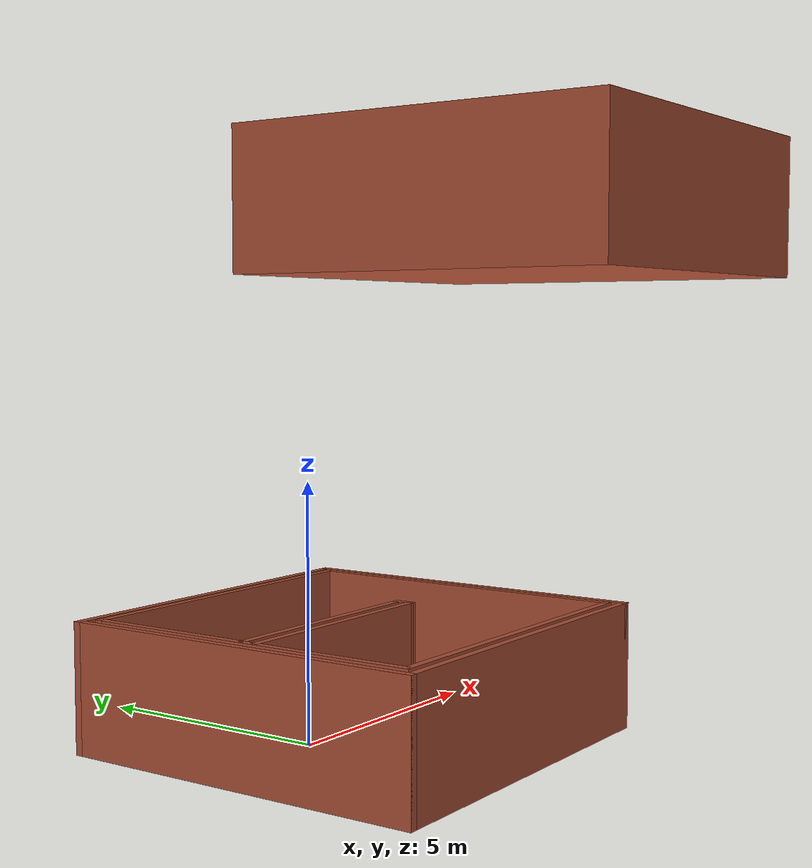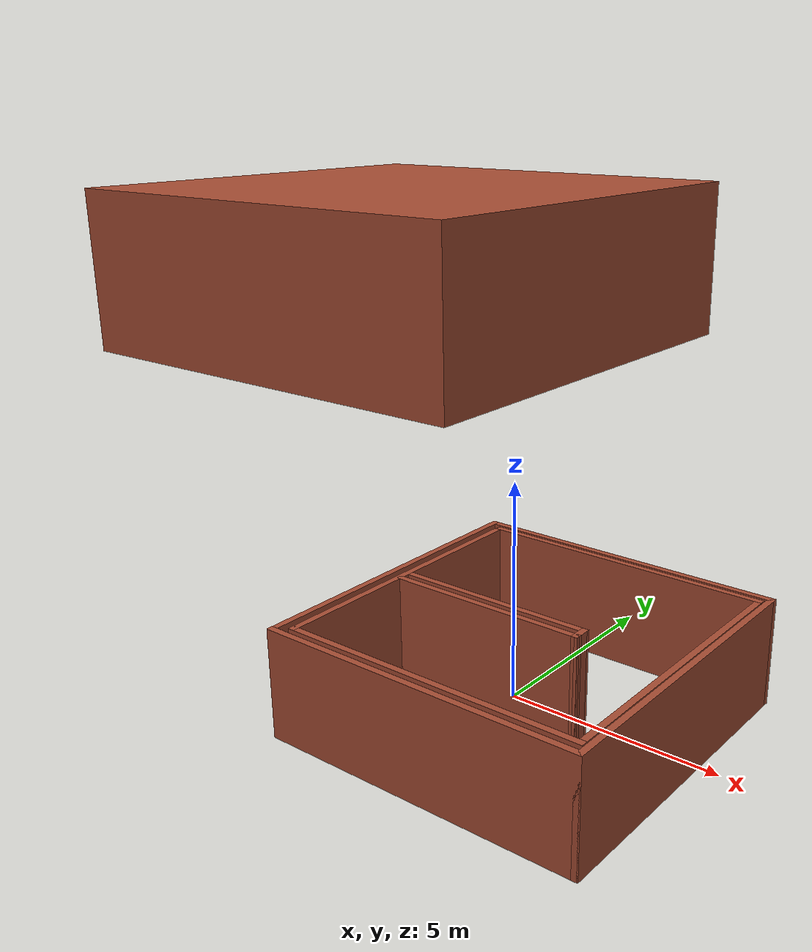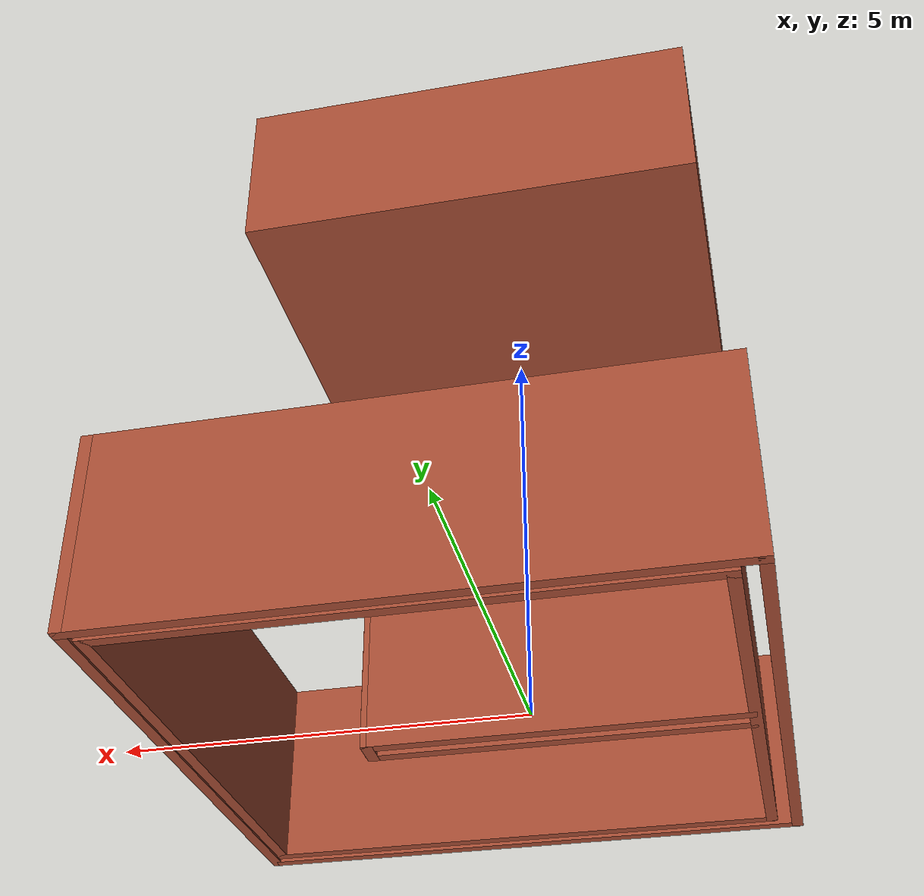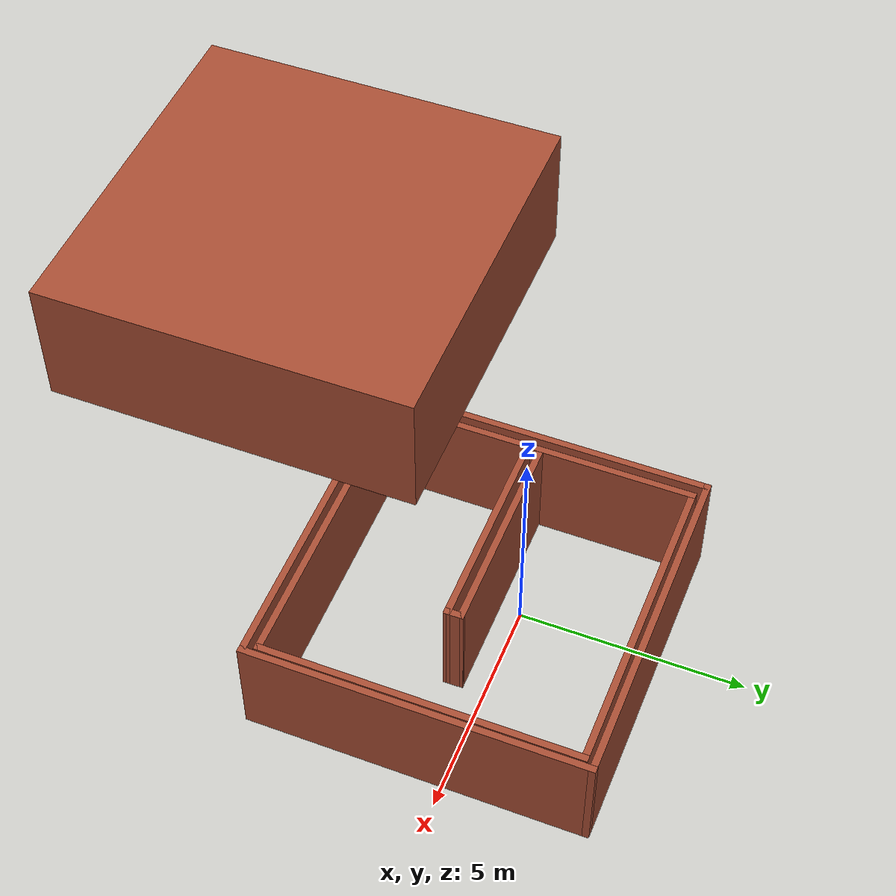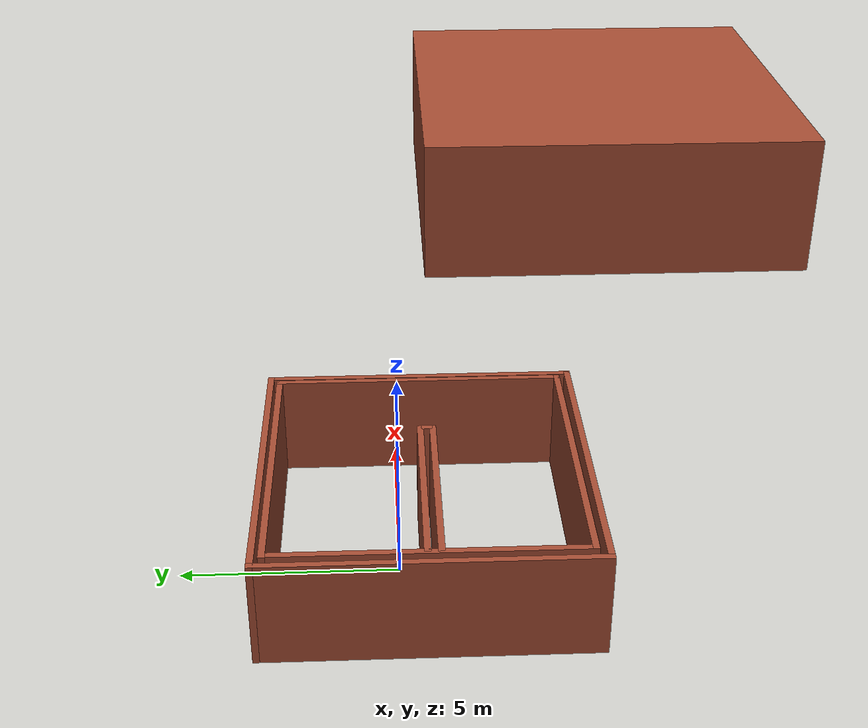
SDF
<?xml version='1.0'?>
<sdf version='1.6'>
  <model name='room_mini'>
    <pose frame=''>0.812939 -0.610263 0 0 -0 0</pose>
    <link name='Wall_0'>
      <collision name='Wall_0_Collision'>
        <geometry>
          <box>
            <size>7 0.15 2.5</size>
          </box>
        </geometry>
        <pose frame=''>0 0 1.25 0 -0 0</pose>
      </collision>
      <visual name='Wall_0_Visual'>
        <pose frame=''>0 0 1.25 0 -0 0</pose>
        <geometry>
          <box>
            <size>7 0.15 2.5</size>
          </box>
        </geometry>
        <material>
          <script>
            <uri>file://media/materials/scripts/gazebo.material</uri>
            <name>Gazebo/Bricks</name>
          </script>
          <ambient>1 1 1 1</ambient>
        </material>
        <meta>
          <layer>0</layer>
        </meta>
      </visual>
      <pose frame=''>0.076061 -3.39774 0 0 -0 0</pose>
    </link>
    <link name='Wall_13'>
      <collision name='Wall_13_Collision'>
        <geometry>
          <box>
            <size>4.75 0.15 2.5</size>
          </box>
        </geometry>
        <pose frame=''>0 0 1.25 0 -0 0</pose>
      </collision>
      <visual name='Wall_13_Visual'>
        <pose frame=''>0 0 1.25 0 -0 0</pose>
        <geometry>
          <box>
            <size>4.75 0.15 2.5</size>
          </box>
        </geometry>
        <material>
          <script>
            <uri>file://media/materials/scripts/gazebo.material</uri>
            <name>Gazebo/Bricks</name>
          </script>
          <ambient>1 1 1 1</ambient>
        </material>
        <meta>
          <layer>0</layer>
        </meta>
      </visual>
      <pose frame=''>-0.985198 -0.23 0 0 -0 0</pose>
    </link>
    <link name='Wall_16'>
      <collision name='Wall_16_Collision'>
        <geometry>
          <box>
            <size>0.441128 0.15 2.5</size>
          </box>
        </geometry>
        <pose frame=''>0 0 1.25 0 -0 0</pose>
      </collision>
      <visual name='Wall_16_Visual'>
        <pose frame=''>0 0 1.25 0 -0 0</pose>
        <geometry>
          <box>
            <size>0.441128 0.15 2.5</size>
          </box>
        </geometry>
        <material>
          <script>
            <uri>file://media/materials/scripts/gazebo.material</uri>
            <name>Gazebo/Bricks</name>
          </script>
          <ambient>1 1 1 1</ambient>
        </material>
        <meta>
          <layer>0</layer>
        </meta>
      </visual>
      <pose frame=''>1.31175 -0.084468 0 0 -0 -1.54982</pose>
    </link>
    <link name='Wall_2'>
      <collision name='Wall_2_Collision'>
        <geometry>
          <box>
            <size>7 0.15 2.5</size>
          </box>
        </geometry>
        <pose frame=''>0 0 1.25 0 -0 0</pose>
      </collision>
      <visual name='Wall_2_Visual'>
        <pose frame=''>0 0 1.25 0 -0 0</pose>
        <geometry>
          <box>
            <size>7 0.15 2.5</size>
          </box>
        </geometry>
        <material>
          <script>
            <uri>file://media/materials/scripts/gazebo.material</uri>
            <name>Gazebo/Bricks</name>
          </script>
          <ambient>1 1 1 1</ambient>
        </material>
        <meta>
          <layer>0</layer>
        </meta>
      </visual>
      <pose frame=''>3.50116 0.027424 0 0 -0 1.57077</pose>
    </link>
    <link name='Wall_20'>
      <collision name='Wall_20_Collision'>
        <geometry>
          <box>
            <size>7.5 0.15 2.5</size>
          </box>
        </geometry>
        <pose frame=''>0 0 1.25 0 -0 0</pose>
      </collision>
      <visual name='Wall_20_Visual'>
        <pose frame=''>0 0 1.25 0 -0 0</pose>
        <geometry>
          <box>
            <size>7.5 0.15 2.5</size>
          </box>
        </geometry>
        <material>
          <script>
            <uri>file://media/materials/scripts/gazebo.material</uri>
            <name>Gazebo/Bricks</name>
          </script>
          <ambient>1 1 1 1</ambient>
        </material>
        <meta>
          <layer>0</layer>
        </meta>
      </visual>
      <pose frame=''>-3.675 0 0 0 -0 -1.5708</pose>
    </link>
    <link name='Wall_23'>
      <collision name='Wall_23_Collision'>
        <geometry>
          <box>
            <size>7.5 0.15 2.5</size>
          </box>
        </geometry>
        <pose frame=''>0 0 1.25 0 -0 0</pose>
      </collision>
      <visual name='Wall_23_Visual'>
        <pose frame=''>0 0 1.25 0 -0 0</pose>
        <geometry>
          <box>
            <size>7.5 0.15 2.5</size>
          </box>
        </geometry>
        <material>
          <script>
            <uri>file://media/materials/scripts/gazebo.material</uri>
            <name>Gazebo/Bricks</name>
          </script>
          <ambient>1 1 1 1</ambient>
        </material>
        <meta>
          <layer>0</layer>
        </meta>
      </visual>
      <pose frame=''>0 -3.675 0 0 -0 0</pose>
    </link>
    <link name='Wall_24'>
      <collision name='Wall_24_Collision'>
        <geometry>
          <box>
            <size>7.5 0.15 2.5</size>
          </box>
        </geometry>
        <pose frame=''>0 0 1.25 0 -0 0</pose>
      </collision>
      <visual name='Wall_24_Visual'>
        <pose frame=''>0 0 1.25 0 -0 0</pose>
        <geometry>
          <box>
            <size>7.5 0.15 2.5</size>
          </box>
        </geometry>
        <material>
          <script>
            <uri>file://media/materials/scripts/gazebo.material</uri>
            <name>Gazebo/Bricks</name>
          </script>
          <ambient>1 1 1 1</ambient>
        </material>
        <meta>
          <layer>0</layer>
        </meta>
      </visual>
      <pose frame=''>3.675 0 0 0 -0 1.5708</pose>
    </link>
    <link name='Wall_25'>
      <collision name='Wall_25_Collision'>
        <geometry>
          <box>
            <size>7.5 0.15 2.5</size>
          </box>
        </geometry>
        <pose frame=''>0 0 1.25 0 -0 0</pose>
      </collision>
      <visual name='Wall_25_Visual'>
        <pose frame=''>0 0 1.25 0 -0 0</pose>
        <geometry>
          <box>
            <size>7.5 0.15 2.5</size>
          </box>
        </geometry>
        <material>
          <script>
            <uri>file://media/materials/scripts/gazebo.material</uri>
            <name>Gazebo/Bricks</name>
          </script>
          <ambient>1 1 1 1</ambient>
        </material>
        <meta>
          <layer>0</layer>
        </meta>
      </visual>
      <pose frame=''>0 3.675 0 0 -0 3.14159</pose>
    </link>
    <link name='Wall_3'>
      <collision name='Wall_3_Collision'>
        <geometry>
          <box>
            <size>7 0.15 2.5</size>
          </box>
        </geometry>
        <pose frame=''>0 0 1.25 0 -0 0</pose>
      </collision>
      <visual name='Wall_3_Visual'>
        <pose frame=''>0 0 1.25 0 -0 0</pose>
        <geometry>
          <box>
            <size>7 0.15 2.5</size>
          </box>
        </geometry>
        <material>
          <script>
            <uri>file://media/materials/scripts/gazebo.material</uri>
            <name>Gazebo/Bricks</name>
          </script>
          <ambient>1 1 1 1</ambient>
        </material>
        <meta>
          <layer>0</layer>
        </meta>
      </visual>
      <pose frame=''>0.076264 3.45259 0 0 -0 3.14159</pose>
    </link>
    <link name='Wall_4'>
      <collision name='Wall_4_Collision'>
        <geometry>
          <box>
            <size>7 0.15 2.5</size>
          </box>
        </geometry>
        <pose frame=''>0 0 1.25 0 -0 0</pose>
      </collision>
      <visual name='Wall_4_Visual'>
        <pose frame=''>0 0 1.25 0 -0 0</pose>
        <geometry>
          <box>
            <size>7 0.15 2.5</size>
          </box>
        </geometry>
        <material>
          <script>
            <uri>file://media/materials/scripts/gazebo.material</uri>
            <name>Gazebo/Bricks</name>
          </script>
          <ambient>1 1 1 1</ambient>
        </material>
        <meta>
          <layer>0</layer>
        </meta>
      </visual>
      <pose frame=''>-3.34884 0.027424 0 0 -0 -1.57083</pose>
    </link>
    <link name='Wall_6'>
      <collision name='Wall_6_Collision'>
        <geometry>
          <box>
            <size>4.75 0.15 2.5</size>
          </box>
        </geometry>
        <pose frame=''>0 0 1.25 0 -0 0</pose>
      </collision>
      <visual name='Wall_6_Visual'>
        <pose frame=''>0 0 1.25 0 -0 0</pose>
        <geometry>
          <box>
            <size>4.75 0.15 2.5</size>
          </box>
        </geometry>
        <material>
          <script>
            <uri>file://media/materials/scripts/gazebo.material</uri>
            <name>Gazebo/Bricks</name>
          </script>
          <ambient>1 1 1 1</ambient>
        </material>
        <meta>
          <layer>0</layer>
        </meta>
      </visual>
      <pose frame=''>-0.991303 0.061064 0 0 -0 0</pose>
    </link>

    <link name='Wall_1001'>
      <collision name='Wall_1001_Collision'>
        <geometry>
          <box>
            <size>7 7 1</size>
          </box>
        </geometry>
        <pose frame=''>0 0 5 0 -0 0</pose>
      </collision>
      <visual name='Wall_1001_Visual'>
        <pose frame=''>0 0 5 0 -0 0</pose>
        <geometry>
          <box>
            <size>7 7 2.5</size>
          </box>
        </geometry>
        <material>
          <script>
            <uri>file://media/materials/scripts/gazebo.material</uri>
            <name>Gazebo/Bricks</name>
          </script>
          <ambient>1 1 1 1</ambient>
        </material>
        <meta>
          <layer>0</layer>
        </meta>
      </visual>
      <pose frame=''>0.076061 -3.39774 5 0 -0 0</pose>
    </link>
    <static>1</static>
  </model>
</sdf>
